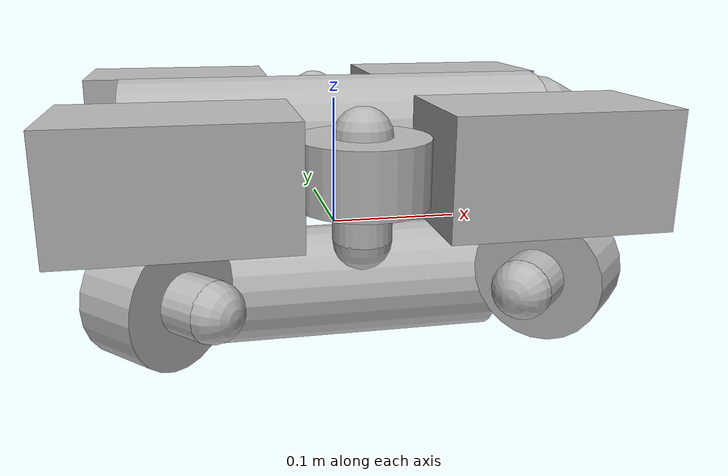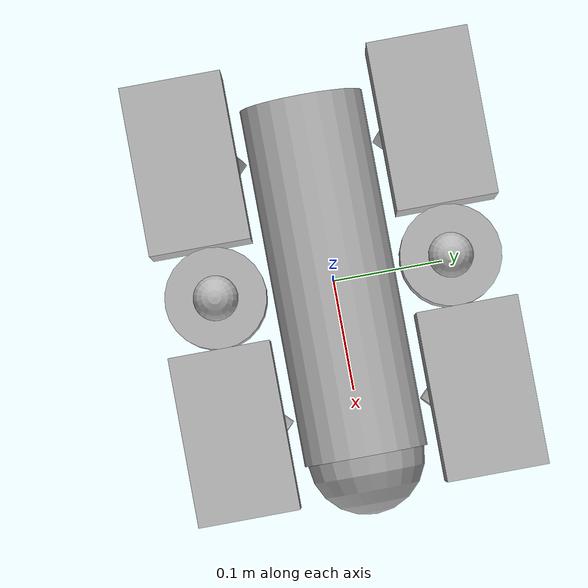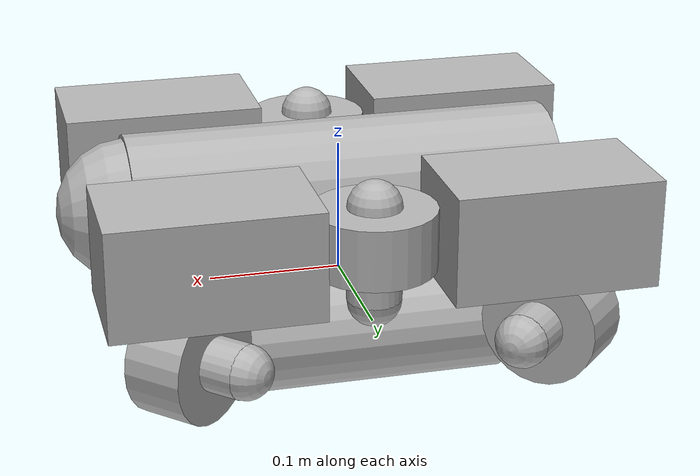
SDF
<sdf version='1.6'>
  <model name='orca'>
    <link name='base_link'>
      <pose frame=''>0 0 0 0 -0 0</pose>
      <inertial>
        <pose frame=''>0 0 0.011 0 -0 0</pose>
        <mass>10</mass>
        <inertia>
          <ixx>0.148967</ixx>
          <ixy>0</ixy>
          <ixz>0</ixz>
          <iyy>0.227804</iyy>
          <iyz>0</iyz>
          <izz>0.269244</izz>
        </inertia>
      </inertial>
      <collision name='base_link_collision'>
        <pose frame=''>0 0 0 0 -0 0</pose>
        <geometry>
          <box>
            <size>0.457 0.338 0.254</size>
          </box>
        </geometry>
        <surface>
          <contact>
            <ode/>
          </contact>
          <friction>
            <ode/>
          </friction>
        </surface>
      </collision>
      <visual name='base_link_visual'>
        <pose frame=''>0.12 0.11 0.07 0 -0 0</pose>
        <geometry>
          <box>
            <size>0.15 0.09 0.08</size>
          </box>
        </geometry>
        <material>
          <script>
            <uri>__default__</uri>
            <name>__default__</name>
          </script>
        </material>
      </visual>
      <visual name='base_link_visual_1'>
        <pose frame=''>0.12 -0.11 0.07 0 -0 0</pose>
        <geometry>
          <box>
            <size>0.15 0.09 0.08</size>
          </box>
        </geometry>
        <material>
          <script>
            <uri>__default__</uri>
            <name>__default__</name>
          </script>
        </material>
      </visual>
      <visual name='base_link_visual_2'>
        <pose frame=''>-0.12 0.11 0.07 0 -0 0</pose>
        <geometry>
          <box>
            <size>0.15 0.09 0.08</size>
          </box>
        </geometry>
        <material>
          <script>
            <uri>__default__</uri>
            <name>__default__</name>
          </script>
        </material>
      </visual>
      <visual name='base_link_visual_3'>
        <pose frame=''>-0.12 -0.11 0.07 0 -0 0</pose>
        <geometry>
          <box>
            <size>0.15 0.09 0.08</size>
          </box>
        </geometry>
        <material>
          <script>
            <uri>__default__</uri>
            <name>__default__</name>
          </script>
        </material>
      </visual>
      <visual name='base_link_visual_4'>
        <pose frame=''>0 0 0.063 3.14159 1.57079 3.14159</pose>
        <geometry>
          <cylinder>
            <length>0.32</length>
            <radius>0.055</radius>
          </cylinder>
        </geometry>
        <material>
          <script>
            <uri>__default__</uri>
            <name>__default__</name>
          </script>
        </material>
      </visual>
      <visual name='base_link_visual_5'>
        <pose frame=''>0.16 0 0.063 3.14159 1.57079 3.14159</pose>
        <geometry>
          <sphere>
            <radius>0.052</radius>
          </sphere>
        </geometry>
        <material>
          <script>
            <uri>__default__</uri>
            <name>__default__</name>
          </script>
        </material>
      </visual>
      <visual name='base_link_visual_6'>
        <pose frame=''>0 0 -0.05 3.14159 1.57079 3.14159</pose>
        <geometry>
          <cylinder>
            <length>0.25</length>
            <radius>0.045</radius>
          </cylinder>
        </geometry>
        <material>
          <script>
            <uri>__default__</uri>
            <name>__default__</name>
          </script>
        </material>
      </visual>
      <visual name='base_link_fixed_joint_lump__t200_link_front_left_visual_7'>
        <pose frame=''>0.15 0.09 -0.009 3.14159 1.57079 2.3562</pose>
        <geometry>
          <sphere>
            <radius>0.02</radius>
          </sphere>
        </geometry>
      </visual>
      <visual name='base_link_fixed_joint_lump__t200_link_front_left_visual_8'>
        <pose frame=''>0.100503 0.139497 -0.009 3.14159 1.57079 2.3562</pose>
        <geometry>
          <sphere>
            <radius>0.02</radius>
          </sphere>
        </geometry>
      </visual>
      <visual name='base_link_fixed_joint_lump__t200_link_front_left_visual_9'>
        <pose frame=''>0.125251 0.114749 -0.009 3.14159 1.57079 2.3562</pose>
        <geometry>
          <cylinder>
            <length>0.07</length>
            <radius>0.02</radius>
          </cylinder>
        </geometry>
      </visual>
      <visual name='base_link_fixed_joint_lump__t200_link_front_left_visual_10'>
        <pose frame=''>0.13409 0.10591 -0.009 3.14159 1.57079 2.3562</pose>
        <geometry>
          <cylinder>
            <length>0.045</length>
            <radius>0.045</radius>
          </cylinder>
        </geometry>
      </visual>
      <visual name='base_link_fixed_joint_lump__t200_link_front_right_visual_11'>
        <pose frame=''>0.15 -0.09 -0.009 -3.14159 1.57079 -2.3562</pose>
        <geometry>
          <sphere>
            <radius>0.02</radius>
          </sphere>
        </geometry>
      </visual>
      <visual name='base_link_fixed_joint_lump__t200_link_front_right_visual_12'>
        <pose frame=''>0.100503 -0.139497 -0.009 -3.14159 1.57079 -2.3562</pose>
        <geometry>
          <sphere>
            <radius>0.02</radius>
          </sphere>
        </geometry>
      </visual>
      <visual name='base_link_fixed_joint_lump__t200_link_front_right_visual_13'>
        <pose frame=''>0.125251 -0.114749 -0.009 -3.14159 1.57079 -2.3562</pose>
        <geometry>
          <cylinder>
            <length>0.07</length>
            <radius>0.02</radius>
          </cylinder>
        </geometry>
      </visual>
      <visual name='base_link_fixed_joint_lump__t200_link_front_right_visual_14'>
        <pose frame=''>0.13409 -0.10591 -0.009 -3.14159 1.57079 -2.3562</pose>
        <geometry>
          <cylinder>
            <length>0.045</length>
            <radius>0.045</radius>
          </cylinder>
        </geometry>
      </visual>
      <visual name='base_link_fixed_joint_lump__t200_link_rear_left_visual_15'>
        <pose frame=''>-0.15 0.09 -0.009 3.14159 1.57079 0.785403</pose>
        <geometry>
          <sphere>
            <radius>0.02</radius>
          </sphere>
        </geometry>
      </visual>
      <visual name='base_link_fixed_joint_lump__t200_link_rear_left_visual_16'>
        <pose frame=''>-0.100503 0.139497 -0.009 3.14159 1.57079 0.785403</pose>
        <geometry>
          <sphere>
            <radius>0.02</radius>
          </sphere>
        </geometry>
      </visual>
      <visual name='base_link_fixed_joint_lump__t200_link_rear_left_visual_17'>
        <pose frame=''>-0.125251 0.114749 -0.009 3.14159 1.57079 0.785403</pose>
        <geometry>
          <cylinder>
            <length>0.07</length>
            <radius>0.02</radius>
          </cylinder>
        </geometry>
      </visual>
      <visual name='base_link_fixed_joint_lump__t200_link_rear_left_visual_18'>
        <pose frame=''>-0.13409 0.10591 -0.009 3.14159 1.57079 0.785403</pose>
        <geometry>
          <cylinder>
            <length>0.045</length>
            <radius>0.045</radius>
          </cylinder>
        </geometry>
      </visual>
      <visual name='base_link_fixed_joint_lump__t200_link_rear_right_visual_19'>
        <pose frame=''>-0.15 -0.09 -0.009 3.14159 1.57079 -0.785403</pose>
        <geometry>
          <sphere>
            <radius>0.02</radius>
          </sphere>
        </geometry>
      </visual>
      <visual name='base_link_fixed_joint_lump__t200_link_rear_right_visual_20'>
        <pose frame=''>-0.100503 -0.139497 -0.009 3.14159 1.57079 -0.785403</pose>
        <geometry>
          <sphere>
            <radius>0.02</radius>
          </sphere>
        </geometry>
      </visual>
      <visual name='base_link_fixed_joint_lump__t200_link_rear_right_visual_21'>
        <pose frame=''>-0.125251 -0.114749 -0.009 3.14159 1.57079 -0.785403</pose>
        <geometry>
          <cylinder>
            <length>0.07</length>
            <radius>0.02</radius>
          </cylinder>
        </geometry>
      </visual>
      <visual name='base_link_fixed_joint_lump__t200_link_rear_right_visual_22'>
        <pose frame=''>-0.13409 -0.10591 -0.009 3.14159 1.57079 -0.785403</pose>
        <geometry>
          <cylinder>
            <length>0.045</length>
            <radius>0.045</radius>
          </cylinder>
        </geometry>
      </visual>
      <visual name='base_link_fixed_joint_lump__t200_link_vertical_left_visual_23'>
        <pose frame=''>0 0.105 0.09 0 -0 0</pose>
        <geometry>
          <sphere>
            <radius>0.02</radius>
          </sphere>
        </geometry>
      </visual>
      <visual name='base_link_fixed_joint_lump__t200_link_vertical_left_visual_24'>
        <pose frame=''>0 0.105 0.02 0 -0 0</pose>
        <geometry>
          <sphere>
            <radius>0.02</radius>
          </sphere>
        </geometry>
      </visual>
      <visual name='base_link_fixed_joint_lump__t200_link_vertical_left_visual_25'>
        <pose frame=''>0 0.105 0.055 0 -0 0</pose>
        <geometry>
          <cylinder>
            <length>0.07</length>
            <radius>0.02</radius>
          </cylinder>
        </geometry>
      </visual>
      <visual name='base_link_fixed_joint_lump__t200_link_vertical_left_visual_26'>
        <pose frame=''>0 0.105 0.0675 0 -0 0</pose>
        <geometry>
          <cylinder>
            <length>0.045</length>
            <radius>0.045</radius>
          </cylinder>
        </geometry>
      </visual>
      <visual name='base_link_fixed_joint_lump__t200_link_vertical_right_visual_27'>
        <pose frame=''>0 -0.105 0.09 0 -0 0</pose>
        <geometry>
          <sphere>
            <radius>0.02</radius>
          </sphere>
        </geometry>
      </visual>
      <visual name='base_link_fixed_joint_lump__t200_link_vertical_right_visual_28'>
        <pose frame=''>0 -0.105 0.02 0 -0 0</pose>
        <geometry>
          <sphere>
            <radius>0.02</radius>
          </sphere>
        </geometry>
      </visual>
      <visual name='base_link_fixed_joint_lump__t200_link_vertical_right_visual_29'>
        <pose frame=''>0 -0.105 0.055 0 -0 0</pose>
        <geometry>
          <cylinder>
            <length>0.07</length>
            <radius>0.02</radius>
          </cylinder>
        </geometry>
      </visual>
      <visual name='base_link_fixed_joint_lump__t200_link_vertical_right_visual_30'>
        <pose frame=''>0 -0.105 0.0675 0 -0 0</pose>
        <geometry>
          <cylinder>
            <length>0.045</length>
            <radius>0.045</radius>
          </cylinder>
        </geometry>
      </visual>
      <velocity_decay/>
      <sensor name='barometer_sensor' type='altimeter'>
        <update_rate>50</update_rate>
        <plugin name='OrcaBarometerPlugin' filename='libOrcaBarometerPlugin.so'>
          <ros_topic>/barometer</ros_topic>
          <fluid_density>1029</fluid_density>
        </plugin>
      </sensor>
      <gravity>1</gravity>
      <velocity_decay/>
      <gravity>1</gravity>
      <sensor name='imu_sensor' type='imu'>
        <update_rate>50</update_rate>
        <plugin name='OrcaIMUPlugin' filename='libOrcaIMUPlugin.so'/>
        <pose frame=''>0 0 0 0 -0 0</pose>
      </sensor>
    </link>
    <plugin name='OrcaBuoyancyPlugin' filename='libOrcaBuoyancyPlugin.so'>
      <fluid_density>1029</fluid_density>
      <surface>10</surface>
      <link name='base_link'>
        <center_of_volume>0 0 0.06</center_of_volume>
        <volume>0.01</volume>
      </link>
    </plugin>
    <plugin name='OrcaDragPlugin' filename='libOrcaDragPlugin.so'>
      <link name='base_link'>
        <center_of_mass>0 0 0.011</center_of_mass>
        <tether_attach>-0.25 0 -0.009</tether_attach>
        <tether_drag>0</tether_drag>
        <surface>10</surface>
      </link>
    </plugin>
    <plugin name='OrcaThrusterPlugin' filename='libOrcaThrusterPlugin.so'>
      <ros_topic>/orca_base/control</ros_topic>
      <thruster name='front_right'>
        <pos_force>50</pos_force>
        <neg_force>40</neg_force>
        <origin rpy='0 1.57079632679 0.785398163397' xyz='0.15 -0.09 -0.009'/>
      </thruster>
      <thruster name='front_left'>
        <pos_force>50</pos_force>
        <neg_force>40</neg_force>
        <origin rpy='0 1.57079632679 -0.785398163397' xyz='0.15 0.09 -0.009'/>
      </thruster>
      <thruster name='rear_right'>
        <pos_force>-40</pos_force>
        <neg_force>-50</neg_force>
        <origin rpy='0 1.57079632679 2.35619449019' xyz='-0.15 -0.09 -0.009'/>
      </thruster>
      <thruster name='rear_left'>
        <pos_force>-40</pos_force>
        <neg_force>-50</neg_force>
        <origin rpy='0 1.57079632679 -2.35619449019' xyz='-0.15 0.09 -0.009'/>
      </thruster>
      <thruster name='vertical_right'>
        <pos_force>50</pos_force>
        <neg_force>40</neg_force>
        <origin rpy='0 0 0' xyz='0 -0.105 0.09'/>
      </thruster>
      <thruster name='vertical_left'>
        <pos_force>-40</pos_force>
        <neg_force>-50</neg_force>
        <origin rpy='0 0 0' xyz='0 0.105 0.09'/>
      </thruster>
    </plugin>
    <plugin name='OrcaGPSPlugin' filename='libOrcaGPSPlugin.so'>
      <link name='base_link'>
        <ros_topic>/gps</ros_topic>
        <mast_height>1</mast_height>
        <surface>10</surface>
      </link>
    </plugin>
    <static>0</static>
    <plugin name='OrcaGroundTruthPlugin' filename='libOrcaGroundTruthPlugin.so'>
      <link name='base_link'/>
      <odom_topic>/ground_truth</odom_topic>
      <surface>10</surface>
    </plugin>
  </model>
</sdf>
